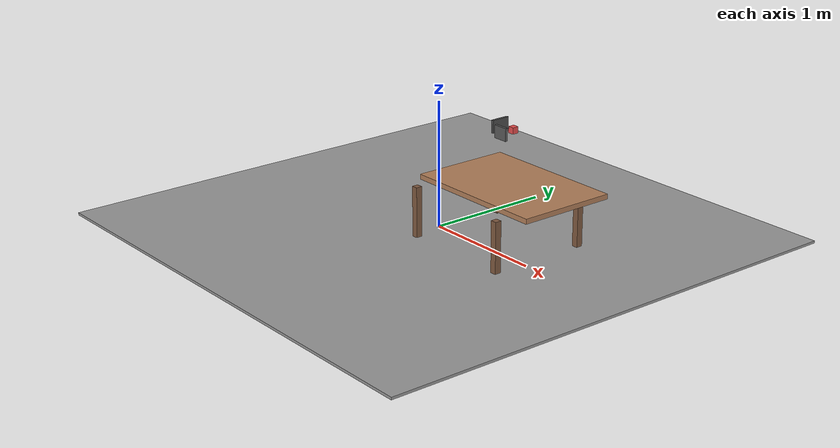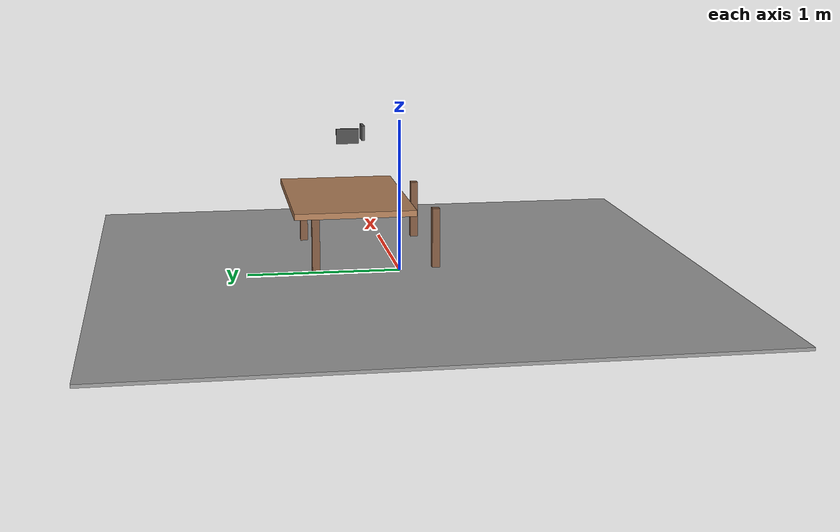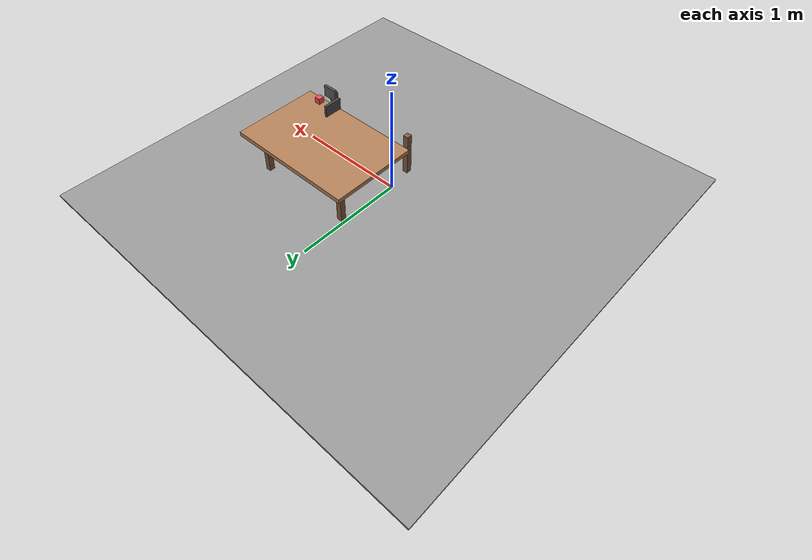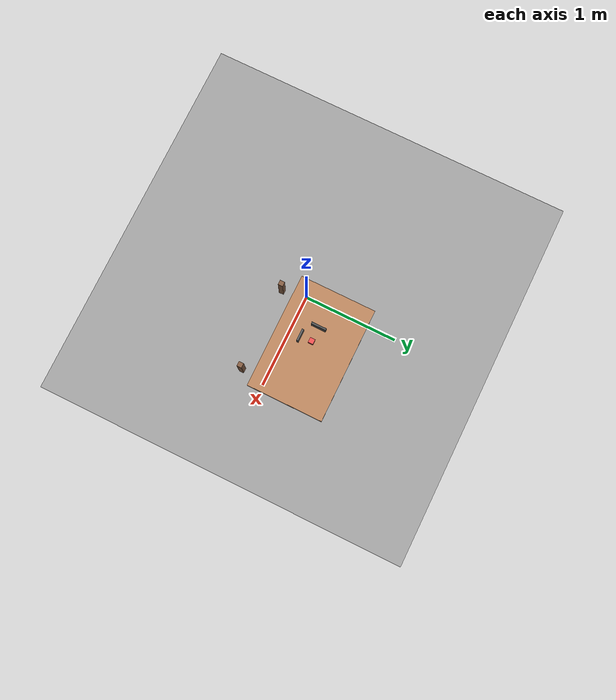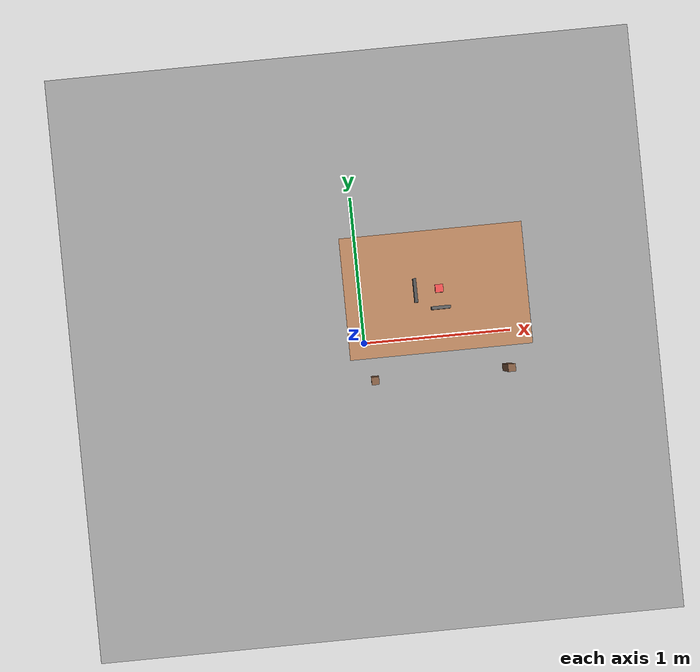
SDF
<?xml version="1.0"?>
<sdf version="1.9">
  <world name="nbv_world">

    <!-- Once any system is listed explicitly, Gazebo no longer injects its
         default systems. Keep the complete standard set here. -->
    <plugin filename="gz-sim-physics-system" name="gz::sim::systems::Physics"/>
    <plugin filename="gz-sim-user-commands-system" name="gz::sim::systems::UserCommands"/>
    <plugin filename="gz-sim-scene-broadcaster-system" name="gz::sim::systems::SceneBroadcaster"/>

    <!-- Required for RGB-D cameras and other rendering-based sensors. -->
    <plugin filename="gz-sim-sensors-system" name="gz::sim::systems::Sensors">
      <render_engine>ogre2</render_engine>
    </plugin>

    <!-- Physics -->
    <physics name="1ms" type="ignored">
      <max_step_size>0.001</max_step_size>
      <real_time_factor>1.0</real_time_factor>
    </physics>

    <!-- Lighting -->
    <light type="directional" name="sun">
      <pose>0 0 10 0 0 0</pose>
      <cast_shadows>true</cast_shadows>
      <intensity>1.0</intensity>
      <direction>-0.2 -0.2 -1.0</direction>
      <diffuse>0.8 0.8 0.8 1.0</diffuse>
      <specular>0.1 0.1 0.1 1.0</specular>
    </light>

    <!-- Ground plane -->
    <model name="ground">
      <static>true</static>
      <link name="ground_link">
        <collision name="collision">
          <geometry>
            <box>
              <size>4 4 0.02</size>
            </box>
          </geometry>
          <surface>
            <friction>
              <ode>
                <mu>1.0</mu>
                <mu2>1.0</mu2>
              </ode>
            </friction>
          </surface>
        </collision>
        <visual name="visual">
          <geometry>
            <box>
              <size>4 4 0.02</size>
            </box>
          </geometry>
          <material>
            <ambient>0.4 0.4 0.4 1.0</ambient>
            <diffuse>0.6 0.6 0.6 1.0</diffuse>
          </material>
        </visual>
      </link>
      <pose>0 0 -0.01 0 0 0</pose>
    </model>

    <!-- Table (0.8m height, as specified in project) -->
    <model name="table">
      <static>true</static>
      <link name="table_link">
        <collision name="collision">
          <geometry>
            <box>
              <size>1.2 0.8 0.04</size>
            </box>
          </geometry>
        </collision>
        <visual name="visual">
          <geometry>
            <box>
              <size>1.2 0.8 0.04</size>
            </box>
          </geometry>
          <material>
            <ambient>0.5 0.35 0.25 1.0</ambient>
            <diffuse>0.7 0.5 0.35 1.0</diffuse>
          </material>
        </visual>
      </link>
      <!-- Position table in front of robot -->
      <pose>0.5 0.3 0.4 0 0 0</pose>
    </model>

    <!-- Table legs -->
    <model name="table_leg_1">
      <static>true</static>
      <link name="leg_link">
        <collision name="collision">
          <geometry>
            <box>
              <size>0.05 0.05 0.78</size>
            </box>
          </geometry>
        </collision>
        <visual name="visual">
          <geometry>
            <box>
              <size>0.05 0.05 0.78</size>
            </box>
          </geometry>
          <material>
            <ambient>0.3 0.2 0.15 1.0</ambient>
            <diffuse>0.5 0.35 0.25 1.0</diffuse>
          </material>
        </visual>
      </link>
      <pose>0.05 -0.25 0.01 0 0 0</pose>
    </model>
    <model name="table_leg_2">
      <static>true</static>
      <link name="leg_link">
        <collision name="collision">
          <geometry>
            <box>
              <size>0.05 0.05 0.78</size>
            </box>
          </geometry>
        </collision>
        <visual name="visual">
          <geometry>
            <box>
              <size>0.05 0.05 0.78</size>
            </box>
          </geometry>
          <material>
            <ambient>0.3 0.2 0.15 1.0</ambient>
            <diffuse>0.5 0.35 0.25 1.0</diffuse>
          </material>
        </visual>
      </link>
      <pose>0.95 -0.25 0.01 0 0 0</pose>
    </model>
    <model name="table_leg_3">
      <static>true</static>
      <link name="leg_link">
        <collision name="collision">
          <geometry>
            <box>
              <size>0.05 0.05 0.78</size>
            </box>
          </geometry>
        </collision>
        <visual name="visual">
          <geometry>
            <box>
              <size>0.05 0.05 0.78</size>
            </box>
          </geometry>
          <material>
            <ambient>0.3 0.2 0.15 1.0</ambient>
            <diffuse>0.5 0.35 0.25 1.0</diffuse>
          </material>
        </visual>
      </link>
      <pose>0.05 0.55 0.01 0 0 0</pose>
    </model>
    <model name="table_leg_4">
      <static>true</static>
      <link name="leg_link">
        <collision name="collision">
          <geometry>
            <box>
              <size>0.05 0.05 0.78</size>
            </box>
          </geometry>
        </collision>
        <visual name="visual">
          <geometry>
            <box>
              <size>0.05 0.05 0.78</size>
            </box>
          </geometry>
          <material>
            <ambient>0.3 0.2 0.15 1.0</ambient>
            <diffuse>0.5 0.35 0.25 1.0</diffuse>
          </material>
        </visual>
      </link>
      <pose>0.95 0.55 0.01 0 0 0</pose>
    </model>

    <!-- Target object (small box, 5cm cube, to be localized by NBV) -->
    <model name="target_object">
      <static>true</static>
      <link name="target_link">
        <collision name="collision">
          <geometry>
            <box>
              <size>0.05 0.05 0.05</size>
            </box>
          </geometry>
        </collision>
        <visual name="visual">
          <geometry>
            <box>
              <size>0.05 0.05 0.05</size>
            </box>
          </geometry>
          <material>
            <ambient>0.8 0.2 0.2 1.0</ambient>
            <diffuse>0.9 0.3 0.3 1.0</diffuse>
            <specular>0.1 0.1 0.1 1.0</specular>
          </material>
        </visual>
      </link>
      <!-- Position target on the table surface -->
      <pose>0.5 0.3 0.845 0 0 0</pose>
    </model>

    <!-- Occluder wall (blocks direct view from default robot position) -->
    <model name="occluder_wall">
      <static>true</static>
      <link name="occluder_link">
        <collision name="collision">
          <geometry>
            <box>
              <size>0.02 0.15 0.10</size>
            </box>
          </geometry>
        </collision>
        <visual name="visual">
          <geometry>
            <box>
              <size>0.02 0.15 0.10</size>
            </box>
          </geometry>
          <material>
            <ambient>0.2 0.2 0.2 1.0</ambient>
            <diffuse>0.3 0.3 0.3 1.0</diffuse>
            <specular>0.05 0.05 0.05 1.0</specular>
          </material>
        </visual>
      </link>
      <!-- Occluder positioned between robot and target -->
      <pose>0.35 0.3 0.845 0 0 0</pose>
    </model>

    <!-- Secondary occluder (side obstruction) -->
    <model name="occluder_side">
      <static>true</static>
      <link name="occluder_side_link">
        <collision name="collision">
          <geometry>
            <box>
              <size>0.12 0.02 0.10</size>
            </box>
          </geometry>
        </collision>
        <visual name="visual">
          <geometry>
            <box>
              <size>0.12 0.02 0.10</size>
            </box>
          </geometry>
          <material>
            <ambient>0.25 0.25 0.25 1.0</ambient>
            <diffuse>0.35 0.35 0.35 1.0</diffuse>
            <specular>0.05 0.05 0.05 1.0</specular>
          </material>
        </visual>
      </link>
      <pose>0.5 0.18 0.845 0 0 0</pose>
    </model>

  </world>
</sdf>
